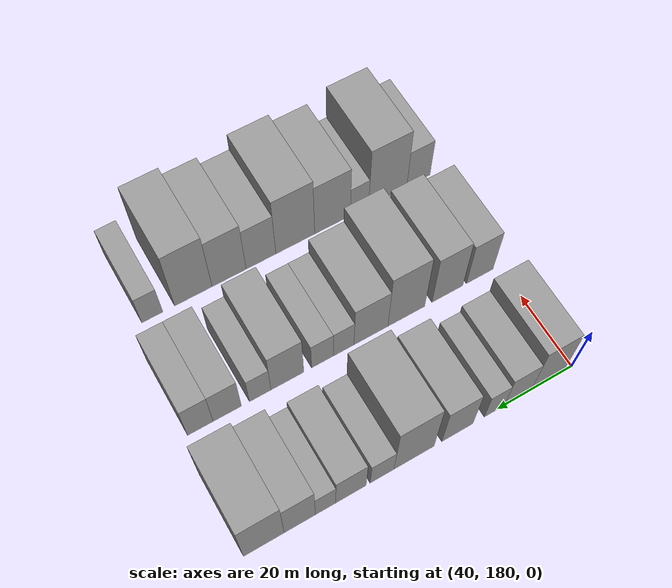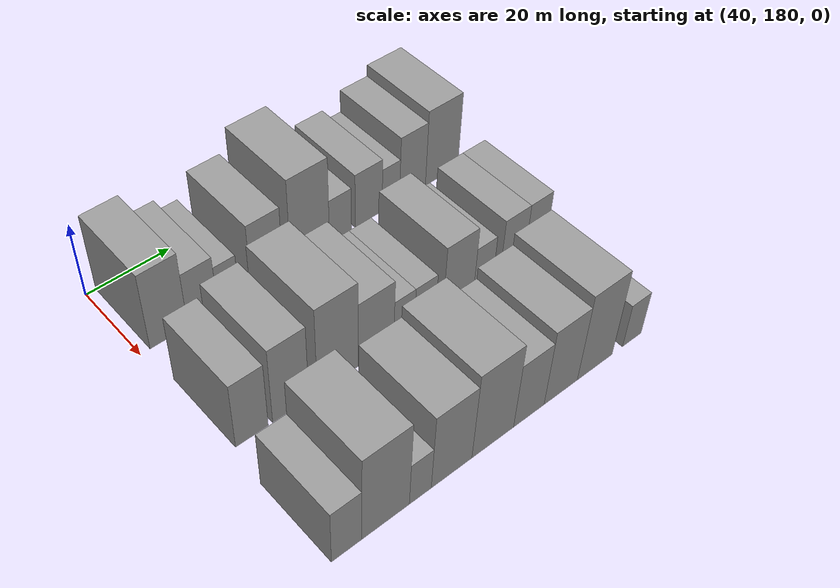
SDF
<sdf version="1.6">
 <world name="default">
  <model name="building_56">
   <static>1</static>
   <pose>50.0000 186.6588 0 0.000000 0.000000 0.000000</pose>
   <link name="link">
    <pose>0 0 10.50 0 0 0</pose>
    <collision name="collision"><geometry><box><size>20.0000 8.8078 21.0000</size></box></geometry></collision>
    <visual name="visual">
     <cast_shadows>0</cast_shadows>
     <geometry><box><size>20.0000 8.8078 21.0000</size></box></geometry>
     <material>
      <script>
       <uri>model://grey_wall/materials/scripts</uri>
       <uri>model://grey_wall/materials/textures</uri>
       <name>vrc/grey_wall</name>
      </script>
     </material>
    </visual>
   </link>
  </model>
  <model name="building_57">
   <static>1</static>
   <pose>50.0000 194.6586 0 0.000000 0.000000 0.000000</pose>
   <link name="link">
    <pose>0 0 7.50 0 0 0</pose>
    <collision name="collision"><geometry><box><size>20.0000 7.1919 15.0000</size></box></geometry></collision>
    <visual name="visual">
     <cast_shadows>0</cast_shadows>
     <geometry><box><size>20.0000 7.1919 15.0000</size></box></geometry>
     <material>
      <script>
       <uri>model://grey_wall/materials/scripts</uri>
       <uri>model://grey_wall/materials/textures</uri>
       <name>vrc/grey_wall</name>
      </script>
     </material>
    </visual>
   </link>
  </model>
  <model name="building_58">
   <static>1</static>
   <pose>50.0000 200.8763 0 0.000000 0.000000 0.000000</pose>
   <link name="link">
    <pose>0 0 6.00 0 0 0</pose>
    <collision name="collision"><geometry><box><size>20.0000 5.2436 12.0000</size></box></geometry></collision>
    <visual name="visual">
     <cast_shadows>0</cast_shadows>
     <geometry><box><size>20.0000 5.2436 12.0000</size></box></geometry>
     <material>
      <script>
       <uri>model://grey_wall/materials/scripts</uri>
       <uri>model://grey_wall/materials/textures</uri>
       <name>vrc/grey_wall</name>
      </script>
     </material>
    </visual>
   </link>
  </model>
  <model name="building_59">
   <static>1</static>
   <pose>50.0000 210.5300 0 0.000000 0.000000 0.000000</pose>
   <link name="link">
    <pose>0 0 9.00 0 0 0</pose>
    <collision name="collision"><geometry><box><size>20.0000 8.0638 18.0000</size></box></geometry></collision>
    <visual name="visual">
     <cast_shadows>0</cast_shadows>
     <geometry><box><size>20.0000 8.0638 18.0000</size></box></geometry>
     <material>
      <script>
       <uri>model://grey_wall/materials/scripts</uri>
       <uri>model://grey_wall/materials/textures</uri>
       <name>vrc/grey_wall</name>
      </script>
     </material>
    </visual>
   </link>
  </model>
  <model name="building_60">
   <static>1</static>
   <pose>50.0000 221.6558 0 0.000000 0.000000 0.000000</pose>
   <link name="link">
    <pose>0 0 12.00 0 0 0</pose>
    <collision name="collision"><geometry><box><size>20.0000 10.1877 24.0000</size></box></geometry></collision>
    <visual name="visual">
     <cast_shadows>0</cast_shadows>
     <geometry><box><size>20.0000 10.1877 24.0000</size></box></geometry>
     <material>
      <script>
       <uri>model://grey_wall/materials/scripts</uri>
       <uri>model://grey_wall/materials/textures</uri>
       <name>vrc/grey_wall</name>
      </script>
     </material>
    </visual>
   </link>
  </model>
  <model name="building_61">
   <static>1</static>
   <pose>50.0000 229.7219 0 0.000000 0.000000 0.000000</pose>
   <link name="link">
    <pose>0 0 6.00 0 0 0</pose>
    <collision name="collision"><geometry><box><size>20.0000 5.9446 12.0000</size></box></geometry></collision>
    <visual name="visual">
     <cast_shadows>0</cast_shadows>
     <geometry><box><size>20.0000 5.9446 12.0000</size></box></geometry>
     <material>
      <script>
       <uri>model://grey_wall/materials/scripts</uri>
       <uri>model://grey_wall/materials/textures</uri>
       <name>vrc/grey_wall</name>
      </script>
     </material>
    </visual>
   </link>
  </model>
  <model name="building_62">
   <static>1</static>
   <pose>50.0000 237.4242 0 0.000000 0.000000 0.000000</pose>
   <link name="link">
    <pose>0 0 7.50 0 0 0</pose>
    <collision name="collision"><geometry><box><size>20.0000 7.4600 15.0000</size></box></geometry></collision>
    <visual name="visual">
     <cast_shadows>0</cast_shadows>
     <geometry><box><size>20.0000 7.4600 15.0000</size></box></geometry>
     <material>
      <script>
       <uri>model://grey_wall/materials/scripts</uri>
       <uri>model://grey_wall/materials/textures</uri>
       <name>vrc/grey_wall</name>
      </script>
     </material>
    </visual>
   </link>
  </model>
  <model name="building_63">
   <static>1</static>
   <pose>50.0000 243.6281 0 0.000000 0.000000 0.000000</pose>
   <link name="link">
    <pose>0 0 6.00 0 0 0</pose>
    <collision name="collision"><geometry><box><size>20.0000 4.9477 12.0000</size></box></geometry></collision>
    <visual name="visual">
     <cast_shadows>0</cast_shadows>
     <geometry><box><size>20.0000 4.9477 12.0000</size></box></geometry>
     <material>
      <script>
       <uri>model://grey_wall/materials/scripts</uri>
       <uri>model://grey_wall/materials/textures</uri>
       <name>vrc/grey_wall</name>
      </script>
     </material>
    </visual>
   </link>
  </model>
  <model name="building_64">
   <static>1</static>
   <pose>50.0000 249.8682 0 0.000000 0.000000 0.000000</pose>
   <link name="link">
    <pose>0 0 9.00 0 0 0</pose>
    <collision name="collision"><geometry><box><size>20.0000 7.5326 18.0000</size></box></geometry></collision>
    <visual name="visual">
     <cast_shadows>0</cast_shadows>
     <geometry><box><size>20.0000 7.5326 18.0000</size></box></geometry>
     <material>
      <script>
       <uri>model://grey_wall/materials/scripts</uri>
       <uri>model://grey_wall/materials/textures</uri>
       <name>vrc/grey_wall</name>
      </script>
     </material>
    </visual>
   </link>
  </model>
  <model name="building_65">
   <static>1</static>
   <pose>50.0000 258.4494 0 0.000000 0.000000 0.000000</pose>
   <link name="link">
    <pose>0 0 10.50 0 0 0</pose>
    <collision name="collision"><geometry><box><size>20.0000 9.6297 21.0000</size></box></geometry></collision>
    <visual name="visual">
     <cast_shadows>0</cast_shadows>
     <geometry><box><size>20.0000 9.6297 21.0000</size></box></geometry>
     <material>
      <script>
       <uri>model://grey_wall/materials/scripts</uri>
       <uri>model://grey_wall/materials/textures</uri>
       <name>vrc/grey_wall</name>
      </script>
     </material>
    </visual>
   </link>
  </model>
  <model name="building_133">
   <static>1</static>
   <pose>79.0000 185.4273 0 0.000000 0.000000 0.000000</pose>
   <link name="link">
    <pose>0 0 9.00 0 0 0</pose>
    <collision name="collision"><geometry><box><size>20.0000 7.3990 18.0000</size></box></geometry></collision>
    <visual name="visual">
     <cast_shadows>0</cast_shadows>
     <geometry><box><size>20.0000 7.3990 18.0000</size></box></geometry>
     <material>
      <script>
       <uri>model://grey_wall/materials/scripts</uri>
       <uri>model://grey_wall/materials/textures</uri>
       <name>vrc/grey_wall</name>
      </script>
     </material>
    </visual>
   </link>
  </model>
  <model name="building_134">
   <static>1</static>
   <pose>79.0000 194.3509 0 0.000000 0.000000 0.000000</pose>
   <link name="link">
    <pose>0 0 10.50 0 0 0</pose>
    <collision name="collision"><geometry><box><size>20.0000 8.4482 21.0000</size></box></geometry></collision>
    <visual name="visual">
     <cast_shadows>0</cast_shadows>
     <geometry><box><size>20.0000 8.4482 21.0000</size></box></geometry>
     <material>
      <script>
       <uri>model://grey_wall/materials/scripts</uri>
       <uri>model://grey_wall/materials/textures</uri>
       <name>vrc/grey_wall</name>
      </script>
     </material>
    </visual>
   </link>
  </model>
  <model name="building_135">
   <static>1</static>
   <pose>79.0000 205.5321 0 0.000000 0.000000 0.000000</pose>
   <link name="link">
    <pose>0 0 12.00 0 0 0</pose>
    <collision name="collision"><geometry><box><size>20.0000 9.9142 24.0000</size></box></geometry></collision>
    <visual name="visual">
     <cast_shadows>0</cast_shadows>
     <geometry><box><size>20.0000 9.9142 24.0000</size></box></geometry>
     <material>
      <script>
       <uri>model://grey_wall/materials/scripts</uri>
       <uri>model://grey_wall/materials/textures</uri>
       <name>vrc/grey_wall</name>
      </script>
     </material>
    </visual>
   </link>
  </model>
  <model name="building_136">
   <static>1</static>
   <pose>79.0000 214.9733 0 0.000000 0.000000 0.000000</pose>
   <link name="link">
    <pose>0 0 9.00 0 0 0</pose>
    <collision name="collision"><geometry><box><size>20.0000 8.9683 18.0000</size></box></geometry></collision>
    <visual name="visual">
     <cast_shadows>0</cast_shadows>
     <geometry><box><size>20.0000 8.9683 18.0000</size></box></geometry>
     <material>
      <script>
       <uri>model://grey_wall/materials/scripts</uri>
       <uri>model://grey_wall/materials/textures</uri>
       <name>vrc/grey_wall</name>
      </script>
     </material>
    </visual>
   </link>
  </model>
  <model name="building_137">
   <static>1</static>
   <pose>79.0000 222.1232 0 0.000000 0.000000 0.000000</pose>
   <link name="link">
    <pose>0 0 6.00 0 0 0</pose>
    <collision name="collision"><geometry><box><size>20.0000 5.3314 12.0000</size></box></geometry></collision>
    <visual name="visual">
     <cast_shadows>0</cast_shadows>
     <geometry><box><size>20.0000 5.3314 12.0000</size></box></geometry>
     <material>
      <script>
       <uri>model://grey_wall/materials/scripts</uri>
       <uri>model://grey_wall/materials/textures</uri>
       <name>vrc/grey_wall</name>
      </script>
     </material>
    </visual>
   </link>
  </model>
  <model name="building_138">
   <static>1</static>
   <pose>79.0000 227.6150 0 0.000000 0.000000 0.000000</pose>
   <link name="link">
    <pose>0 0 6.00 0 0 0</pose>
    <collision name="collision"><geometry><box><size>20.0000 5.6523 12.0000</size></box></geometry></collision>
    <visual name="visual">
     <cast_shadows>0</cast_shadows>
     <geometry><box><size>20.0000 5.6523 12.0000</size></box></geometry>
     <material>
      <script>
       <uri>model://grey_wall/materials/scripts</uri>
       <uri>model://grey_wall/materials/textures</uri>
       <name>vrc/grey_wall</name>
      </script>
     </material>
    </visual>
   </link>
  </model>
  <model name="building_139">
   <static>1</static>
   <pose>79.0000 236.6187 0 0.000000 0.000000 0.000000</pose>
   <link name="link">
    <pose>0 0 9.00 0 0 0</pose>
    <collision name="collision"><geometry><box><size>20.0000 8.3549 18.0000</size></box></geometry></collision>
    <visual name="visual">
     <cast_shadows>0</cast_shadows>
     <geometry><box><size>20.0000 8.3549 18.0000</size></box></geometry>
     <material>
      <script>
       <uri>model://grey_wall/materials/scripts</uri>
       <uri>model://grey_wall/materials/textures</uri>
       <name>vrc/grey_wall</name>
      </script>
     </material>
    </visual>
   </link>
  </model>
  <model name="building_140">
   <static>1</static>
   <pose>79.0000 243.5031 0 0.000000 0.000000 0.000000</pose>
   <link name="link">
    <pose>0 0 6.00 0 0 0</pose>
    <collision name="collision"><geometry><box><size>20.0000 5.4139 12.0000</size></box></geometry></collision>
    <visual name="visual">
     <cast_shadows>0</cast_shadows>
     <geometry><box><size>20.0000 5.4139 12.0000</size></box></geometry>
     <material>
      <script>
       <uri>model://grey_wall/materials/scripts</uri>
       <uri>model://grey_wall/materials/textures</uri>
       <name>vrc/grey_wall</name>
      </script>
     </material>
    </visual>
   </link>
  </model>
  <model name="building_141">
   <static>1</static>
   <pose>79.0000 251.7111 0 0.000000 0.000000 0.000000</pose>
   <link name="link">
    <pose>0 0 7.50 0 0 0</pose>
    <collision name="collision"><geometry><box><size>20.0000 7.0022 15.0000</size></box></geometry></collision>
    <visual name="visual">
     <cast_shadows>0</cast_shadows>
     <geometry><box><size>20.0000 7.0022 15.0000</size></box></geometry>
     <material>
      <script>
       <uri>model://grey_wall/materials/scripts</uri>
       <uri>model://grey_wall/materials/textures</uri>
       <name>vrc/grey_wall</name>
      </script>
     </material>
    </visual>
   </link>
  </model>
  <model name="building_142">
   <static>1</static>
   <pose>79.0000 258.3462 0 0.000000 0.000000 0.000000</pose>
   <link name="link">
    <pose>0 0 7.50 0 0 0</pose>
    <collision name="collision"><geometry><box><size>20.0000 6.2681 15.0000</size></box></geometry></collision>
    <visual name="visual">
     <cast_shadows>0</cast_shadows>
     <geometry><box><size>20.0000 6.2681 15.0000</size></box></geometry>
     <material>
      <script>
       <uri>model://grey_wall/materials/scripts</uri>
       <uri>model://grey_wall/materials/textures</uri>
       <name>vrc/grey_wall</name>
      </script>
     </material>
    </visual>
   </link>
  </model>
  <model name="building_212">
   <static>1</static>
   <pose>108.0000 183.9963 0 0.000000 0.000000 0.000000</pose>
   <link name="link">
    <pose>0 0 7.50 0 0 0</pose>
    <collision name="collision"><geometry><box><size>20.0000 6.6519 15.0000</size></box></geometry></collision>
    <visual name="visual">
     <cast_shadows>0</cast_shadows>
     <geometry><box><size>20.0000 6.6519 15.0000</size></box></geometry>
     <material>
      <script>
       <uri>model://grey_wall/materials/scripts</uri>
       <uri>model://grey_wall/materials/textures</uri>
       <name>vrc/grey_wall</name>
      </script>
     </material>
    </visual>
   </link>
  </model>
  <model name="building_213">
   <static>1</static>
   <pose>108.0000 192.7086 0 0.000000 0.000000 0.000000</pose>
   <link name="link">
    <pose>0 0 12.00 0 0 0</pose>
    <collision name="collision"><geometry><box><size>20.0000 10.7726 24.0000</size></box></geometry></collision>
    <visual name="visual">
     <cast_shadows>0</cast_shadows>
     <geometry><box><size>20.0000 10.7726 24.0000</size></box></geometry>
     <material>
      <script>
       <uri>model://grey_wall/materials/scripts</uri>
       <uri>model://grey_wall/materials/textures</uri>
       <name>vrc/grey_wall</name>
      </script>
     </material>
    </visual>
   </link>
  </model>
  <model name="building_214">
   <static>1</static>
   <pose>108.0000 200.6574 0 0.000000 0.000000 0.000000</pose>
   <link name="link">
    <pose>0 0 6.00 0 0 0</pose>
    <collision name="collision"><geometry><box><size>20.0000 5.1249 12.0000</size></box></geometry></collision>
    <visual name="visual">
     <cast_shadows>0</cast_shadows>
     <geometry><box><size>20.0000 5.1249 12.0000</size></box></geometry>
     <material>
      <script>
       <uri>model://grey_wall/materials/scripts</uri>
       <uri>model://grey_wall/materials/textures</uri>
       <name>vrc/grey_wall</name>
      </script>
     </material>
    </visual>
   </link>
  </model>
  <model name="building_215">
   <static>1</static>
   <pose>108.0000 208.1190 0 0.000000 0.000000 0.000000</pose>
   <link name="link">
    <pose>0 0 10.50 0 0 0</pose>
    <collision name="collision"><geometry><box><size>20.0000 9.7983 21.0000</size></box></geometry></collision>
    <visual name="visual">
     <cast_shadows>0</cast_shadows>
     <geometry><box><size>20.0000 9.7983 21.0000</size></box></geometry>
     <material>
      <script>
       <uri>model://grey_wall/materials/scripts</uri>
       <uri>model://grey_wall/materials/textures</uri>
       <name>vrc/grey_wall</name>
      </script>
     </material>
    </visual>
   </link>
  </model>
  <model name="building_216">
   <static>1</static>
   <pose>108.0000 218.2587 0 0.000000 0.000000 0.000000</pose>
   <link name="link">
    <pose>0 0 12.00 0 0 0</pose>
    <collision name="collision"><geometry><box><size>20.0000 10.4811 24.0000</size></box></geometry></collision>
    <visual name="visual">
     <cast_shadows>0</cast_shadows>
     <geometry><box><size>20.0000 10.4811 24.0000</size></box></geometry>
     <material>
      <script>
       <uri>model://grey_wall/materials/scripts</uri>
       <uri>model://grey_wall/materials/textures</uri>
       <name>vrc/grey_wall</name>
      </script>
     </material>
    </visual>
   </link>
  </model>
  <model name="building_217">
   <static>1</static>
   <pose>108.0000 227.4652 0 0.000000 0.000000 0.000000</pose>
   <link name="link">
    <pose>0 0 9.00 0 0 0</pose>
    <collision name="collision"><geometry><box><size>20.0000 7.9320 18.0000</size></box></geometry></collision>
    <visual name="visual">
     <cast_shadows>0</cast_shadows>
     <geometry><box><size>20.0000 7.9320 18.0000</size></box></geometry>
     <material>
      <script>
       <uri>model://grey_wall/materials/scripts</uri>
       <uri>model://grey_wall/materials/textures</uri>
       <name>vrc/grey_wall</name>
      </script>
     </material>
    </visual>
   </link>
  </model>
  <model name="building_218">
   <static>1</static>
   <pose>108.0000 235.9031 0 0.000000 0.000000 0.000000</pose>
   <link name="link">
    <pose>0 0 10.50 0 0 0</pose>
    <collision name="collision"><geometry><box><size>20.0000 8.9437 21.0000</size></box></geometry></collision>
    <visual name="visual">
     <cast_shadows>0</cast_shadows>
     <geometry><box><size>20.0000 8.9437 21.0000</size></box></geometry>
     <material>
      <script>
       <uri>model://grey_wall/materials/scripts</uri>
       <uri>model://grey_wall/materials/textures</uri>
       <name>vrc/grey_wall</name>
      </script>
     </material>
    </visual>
   </link>
  </model>
  <model name="building_219">
   <static>1</static>
   <pose>108.0000 245.2161 0 0.000000 0.000000 0.000000</pose>
   <link name="link">
    <pose>0 0 12.00 0 0 0</pose>
    <collision name="collision"><geometry><box><size>20.0000 9.6823 24.0000</size></box></geometry></collision>
    <visual name="visual">
     <cast_shadows>0</cast_shadows>
     <geometry><box><size>20.0000 9.6823 24.0000</size></box></geometry>
     <material>
      <script>
       <uri>model://grey_wall/materials/scripts</uri>
       <uri>model://grey_wall/materials/textures</uri>
       <name>vrc/grey_wall</name>
      </script>
     </material>
    </visual>
   </link>
  </model>
  <model name="building_220">
   <static>1</static>
   <pose>108.0000 255.7367 0 0.000000 0.000000 0.000000</pose>
   <link name="link">
    <pose>0 0 6.00 0 0 0</pose>
    <collision name="collision"><geometry><box><size>20.0000 5.3589 12.0000</size></box></geometry></collision>
    <visual name="visual">
     <cast_shadows>0</cast_shadows>
     <geometry><box><size>20.0000 5.3589 12.0000</size></box></geometry>
     <material>
      <script>
       <uri>model://grey_wall/materials/scripts</uri>
       <uri>model://grey_wall/materials/textures</uri>
       <name>vrc/grey_wall</name>
      </script>
     </material>
    </visual>
   </link>
  </model>
 </world>
</sdf>
